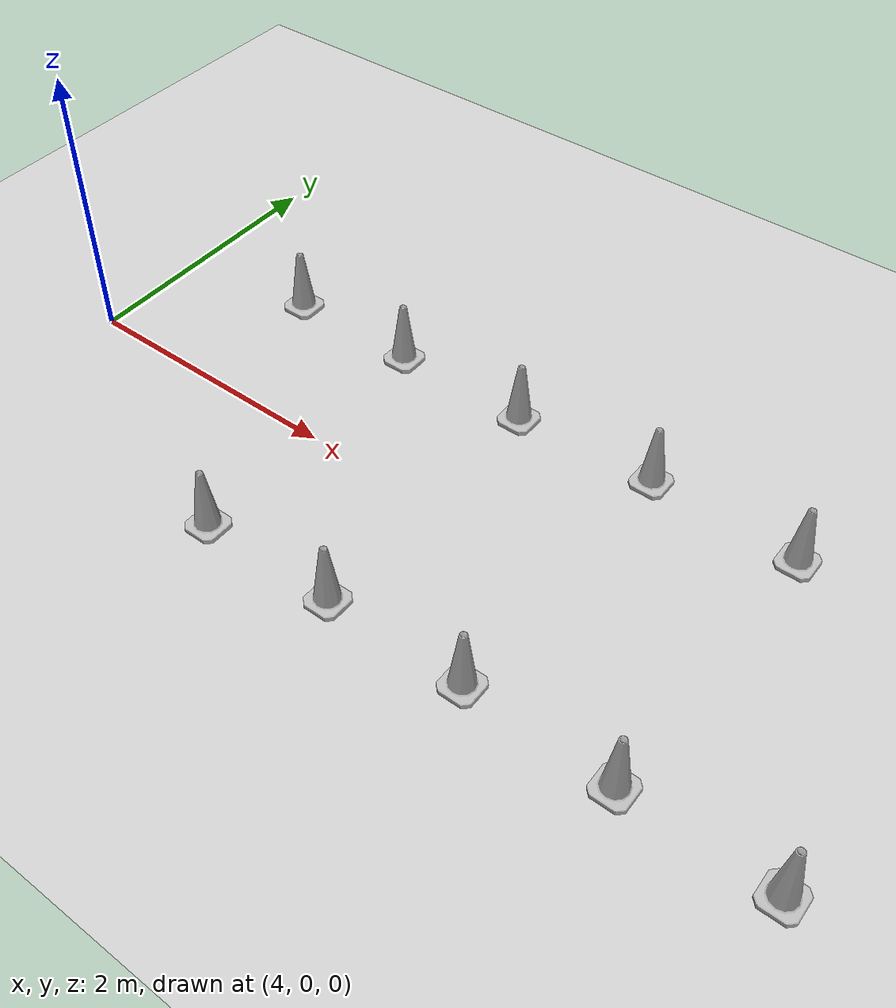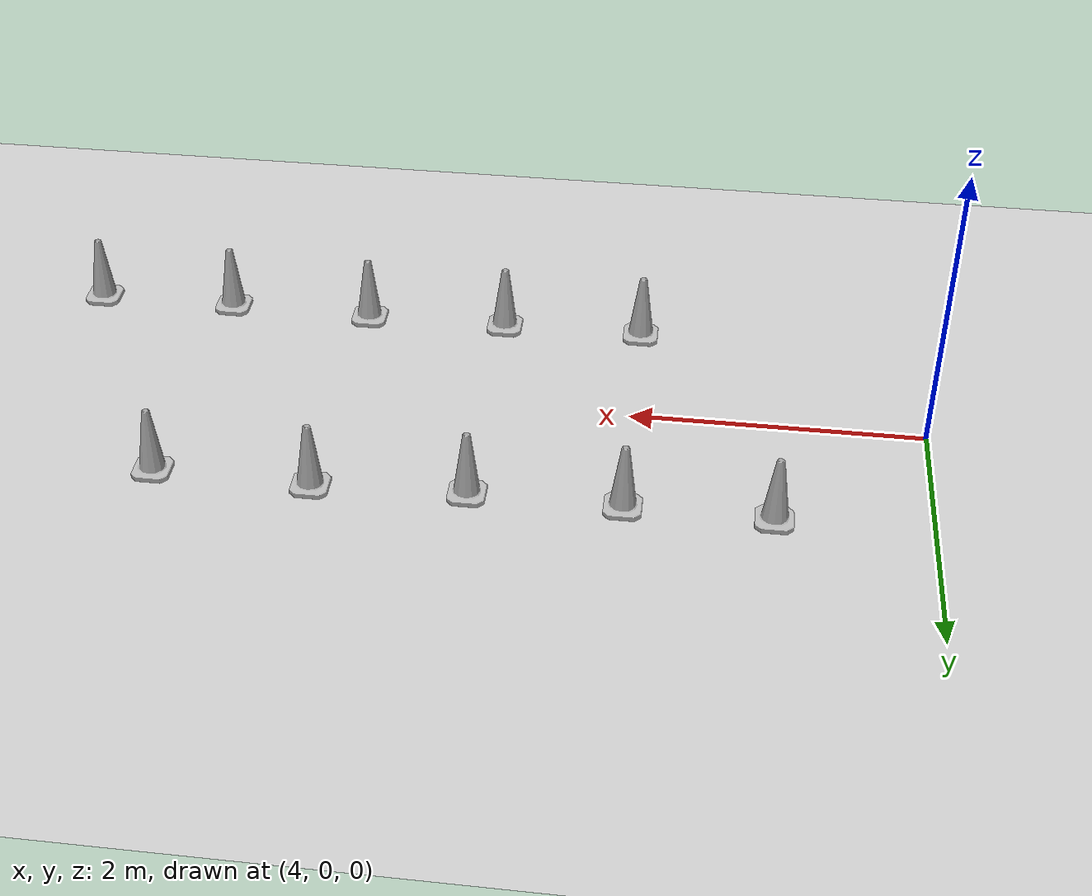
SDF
<sdf version="1.7">
 <world name="default">
  <model name="ground_plane">
   <static>1</static>
   <link name="link">
    <collision name="collision">
     <geometry><plane><normal>0 0 1</normal><size>100 100</size></plane></geometry>
     <surface>
      <contact><collide_bitmask>65535</collide_bitmask></contact>
      <friction><ode><mu>100</mu><mu2>50</mu2></ode></friction>
     </surface>
    </collision>
    <visual name="visual">
     <cast_shadows>0</cast_shadows>
     <geometry><plane><normal>0 0 1</normal><size>100 100</size></plane></geometry>
     <material>
      <script><uri>file://media/materials/scripts/gazebo.material</uri><name>Gazebo/Grey</name></script>
     </material>
    </visual>
   </link>
  </model>
  <model name="Construction_Cone_b_5">
   <link name="link">
    <inertial>
     <inertia><ixx>1</ixx><ixy>0</ixy><ixz>0</ixz><iyy>1</iyy><iyz>0</iyz><izz>1</izz></inertia>
     <mass>1</mass>
    </inertial>
    <visual name="visual">
     <geometry>
      <mesh><scale>4.9 4.9 4.5</scale><uri>./construction_cone/meshes/construction_cone_b.dae</uri></mesh>
     </geometry>
     <material><shader type="pixel"/></material>
    </visual>
    <collision name="collision">
     <geometry>
      <mesh><uri>./construction_cone/meshes/construction_cone_b.dae</uri><scale>4.9 4.9 4.5</scale></mesh>
     </geometry>
     <surface>
      <friction>
       <ode><mu>1</mu><mu2>1</mu2><fdir1>0 0 0</fdir1><slip1>0</slip1><slip2>0</slip2></ode>
       <torsional>
        <coefficient>1</coefficient>
        <patch_radius>0</patch_radius>
        <surface_radius>0</surface_radius>
        <use_patch_radius>1</use_patch_radius>
        <ode><slip>0</slip></ode>
       </torsional>
      </friction>
      <bounce><restitution_coefficient>0</restitution_coefficient><threshold>1e+06</threshold></bounce>
      <contact>
       <collide_without_contact>0</collide_without_contact>
       <collide_without_contact_bitmask>1</collide_without_contact_bitmask>
       <collide_bitmask>1</collide_bitmask>
       <ode>
        <soft_cfm>0</soft_cfm>
        <soft_erp>0.2</soft_erp>
        <kp>1e+13</kp>
        <kd>1</kd>
        <max_vel>0.01</max_vel>
        <min_depth>0</min_depth>
       </ode>
       <bullet>
        <split_impulse>1</split_impulse>
        <split_impulse_penetration_threshold>-0.01</split_impulse_penetration_threshold>
        <soft_cfm>0</soft_cfm>
        <soft_erp>0.2</soft_erp>
        <kp>1e+13</kp>
        <kd>1</kd>
       </bullet>
      </contact>
     </surface>
    </collision>
   </link>
   <static>0</static>
   <pose>5.98393 -0.993979 -3e-06 1e-06 -2e-06 -0</pose>
  </model>
  <model name="Construction_Cone_b_6">
   <link name="link">
    <inertial>
     <inertia><ixx>1</ixx><ixy>0</ixy><ixz>0</ixz><iyy>1</iyy><iyz>0</iyz><izz>1</izz></inertia>
     <mass>1</mass>
    </inertial>
    <visual name="visual">
     <geometry>
      <mesh><scale>4.9 4.9 4.5</scale><uri>./construction_cone/meshes/construction_cone_b.dae</uri></mesh>
     </geometry>
     <material><shader type="pixel"/></material>
    </visual>
    <collision name="collision">
     <geometry>
      <mesh><uri>./construction_cone/meshes/construction_cone_b.dae</uri><scale>4.9 4.9 4.5</scale></mesh>
     </geometry>
     <surface>
      <friction>
       <ode><mu>1</mu><mu2>1</mu2><fdir1>0 0 0</fdir1><slip1>0</slip1><slip2>0</slip2></ode>
       <torsional>
        <coefficient>1</coefficient>
        <patch_radius>0</patch_radius>
        <surface_radius>0</surface_radius>
        <use_patch_radius>1</use_patch_radius>
        <ode><slip>0</slip></ode>
       </torsional>
      </friction>
      <bounce><restitution_coefficient>0</restitution_coefficient><threshold>1e+06</threshold></bounce>
      <contact>
       <collide_without_contact>0</collide_without_contact>
       <collide_without_contact_bitmask>1</collide_without_contact_bitmask>
       <collide_bitmask>1</collide_bitmask>
       <ode>
        <soft_cfm>0</soft_cfm>
        <soft_erp>0.2</soft_erp>
        <kp>1e+13</kp>
        <kd>1</kd>
        <max_vel>0.01</max_vel>
        <min_depth>0</min_depth>
       </ode>
       <bullet>
        <split_impulse>1</split_impulse>
        <split_impulse_penetration_threshold>-0.01</split_impulse_penetration_threshold>
        <soft_cfm>0</soft_cfm>
        <soft_erp>0.2</soft_erp>
        <kp>1e+13</kp>
        <kd>1</kd>
       </bullet>
      </contact>
     </surface>
    </collision>
   </link>
   <static>0</static>
   <pose>6.97365 -0.984254 -8e-06 1e-06 -1e-06 0</pose>
  </model>
  <model name="Construction_Cone_b_7">
   <link name="link">
    <inertial>
     <inertia><ixx>1</ixx><ixy>0</ixy><ixz>0</ixz><iyy>1</iyy><iyz>0</iyz><izz>1</izz></inertia>
     <mass>1</mass>
    </inertial>
    <visual name="visual">
     <geometry>
      <mesh><scale>4.9 4.9 4.5</scale><uri>./construction_cone/meshes/construction_cone_b.dae</uri></mesh>
     </geometry>
     <material><shader type="pixel"/></material>
    </visual>
    <collision name="collision">
     <geometry>
      <mesh><uri>./construction_cone/meshes/construction_cone_b.dae</uri><scale>4.9 4.9 4.5</scale></mesh>
     </geometry>
     <surface>
      <friction>
       <ode><mu>1</mu><mu2>1</mu2><fdir1>0 0 0</fdir1><slip1>0</slip1><slip2>0</slip2></ode>
       <torsional>
        <coefficient>1</coefficient>
        <patch_radius>0</patch_radius>
        <surface_radius>0</surface_radius>
        <use_patch_radius>1</use_patch_radius>
        <ode><slip>0</slip></ode>
       </torsional>
      </friction>
      <bounce><restitution_coefficient>0</restitution_coefficient><threshold>1e+06</threshold></bounce>
      <contact>
       <collide_without_contact>0</collide_without_contact>
       <collide_without_contact_bitmask>1</collide_without_contact_bitmask>
       <collide_bitmask>1</collide_bitmask>
       <ode>
        <soft_cfm>0</soft_cfm>
        <soft_erp>0.2</soft_erp>
        <kp>1e+13</kp>
        <kd>1</kd>
        <max_vel>0.01</max_vel>
        <min_depth>0</min_depth>
       </ode>
       <bullet>
        <split_impulse>1</split_impulse>
        <split_impulse_penetration_threshold>-0.01</split_impulse_penetration_threshold>
        <soft_cfm>0</soft_cfm>
        <soft_erp>0.2</soft_erp>
        <kp>1e+13</kp>
        <kd>1</kd>
       </bullet>
      </contact>
     </surface>
    </collision>
   </link>
   <static>0</static>
   <pose>7.97287 -0.974803 -1e-06 1e-06 -0 0</pose>
  </model>
  <model name="Construction_Cone_b_8">
   <link name="link">
    <inertial>
     <inertia><ixx>1</ixx><ixy>0</ixy><ixz>0</ixz><iyy>1</iyy><iyz>0</iyz><izz>1</izz></inertia>
     <mass>1</mass>
    </inertial>
    <visual name="visual">
     <geometry>
      <mesh><scale>4.9 4.9 4.5</scale><uri>./construction_cone/meshes/construction_cone_b.dae</uri></mesh>
     </geometry>
     <material><shader type="pixel"/></material>
    </visual>
    <collision name="collision">
     <geometry>
      <mesh><uri>./construction_cone/meshes/construction_cone_b.dae</uri><scale>4.9 4.9 4.5</scale></mesh>
     </geometry>
     <surface>
      <friction>
       <ode><mu>1</mu><mu2>1</mu2><fdir1>0 0 0</fdir1><slip1>0</slip1><slip2>0</slip2></ode>
       <torsional>
        <coefficient>1</coefficient>
        <patch_radius>0</patch_radius>
        <surface_radius>0</surface_radius>
        <use_patch_radius>1</use_patch_radius>
        <ode><slip>0</slip></ode>
       </torsional>
      </friction>
      <bounce><restitution_coefficient>0</restitution_coefficient><threshold>1e+06</threshold></bounce>
      <contact>
       <collide_without_contact>0</collide_without_contact>
       <collide_without_contact_bitmask>1</collide_without_contact_bitmask>
       <collide_bitmask>1</collide_bitmask>
       <ode>
        <soft_cfm>0</soft_cfm>
        <soft_erp>0.2</soft_erp>
        <kp>1e+13</kp>
        <kd>1</kd>
        <max_vel>0.01</max_vel>
        <min_depth>0</min_depth>
       </ode>
       <bullet>
        <split_impulse>1</split_impulse>
        <split_impulse_penetration_threshold>-0.01</split_impulse_penetration_threshold>
        <soft_cfm>0</soft_cfm>
        <soft_erp>0.2</soft_erp>
        <kp>1e+13</kp>
        <kd>1</kd>
       </bullet>
      </contact>
     </surface>
    </collision>
   </link>
   <static>0</static>
   <pose>9.00159 -0.999662 -7e-06 -1e-06 1e-06 0</pose>
  </model>
  <model name="Construction_Cone_b_9">
   <link name="link">
    <inertial>
     <inertia><ixx>1</ixx><ixy>0</ixy><ixz>0</ixz><iyy>1</iyy><iyz>0</iyz><izz>1</izz></inertia>
     <mass>1</mass>
    </inertial>
    <visual name="visual">
     <geometry>
      <mesh><scale>4.9 4.9 4.5</scale><uri>./construction_cone/meshes/construction_cone_b.dae</uri></mesh>
     </geometry>
     <material><shader type="pixel"/></material>
    </visual>
    <collision name="collision">
     <geometry>
      <mesh><uri>./construction_cone/meshes/construction_cone_b.dae</uri><scale>4.9 4.9 4.5</scale></mesh>
     </geometry>
     <surface>
      <friction>
       <ode><mu>1</mu><mu2>1</mu2><fdir1>0 0 0</fdir1><slip1>0</slip1><slip2>0</slip2></ode>
       <torsional>
        <coefficient>1</coefficient>
        <patch_radius>0</patch_radius>
        <surface_radius>0</surface_radius>
        <use_patch_radius>1</use_patch_radius>
        <ode><slip>0</slip></ode>
       </torsional>
      </friction>
      <bounce><restitution_coefficient>0</restitution_coefficient><threshold>1e+06</threshold></bounce>
      <contact>
       <collide_without_contact>0</collide_without_contact>
       <collide_without_contact_bitmask>1</collide_without_contact_bitmask>
       <collide_bitmask>1</collide_bitmask>
       <ode>
        <soft_cfm>0</soft_cfm>
        <soft_erp>0.2</soft_erp>
        <kp>1e+13</kp>
        <kd>1</kd>
        <max_vel>0.01</max_vel>
        <min_depth>0</min_depth>
       </ode>
       <bullet>
        <split_impulse>1</split_impulse>
        <split_impulse_penetration_threshold>-0.01</split_impulse_penetration_threshold>
        <soft_cfm>0</soft_cfm>
        <soft_erp>0.2</soft_erp>
        <kp>1e+13</kp>
        <kd>1</kd>
       </bullet>
      </contact>
     </surface>
    </collision>
   </link>
   <static>0</static>
   <pose>9.98921 -1.00261 -5e-06 1e-06 2e-06 0</pose>
  </model>
  <model name="Construction_Cone_y_4">
   <link name="link">
    <inertial>
     <inertia><ixx>1</ixx><ixy>0</ixy><ixz>0</ixz><iyy>1</iyy><iyz>0</iyz><izz>1</izz></inertia>
     <mass>1</mass>
    </inertial>
    <visual name="visual">
     <geometry>
      <mesh><scale>4.9 4.9 4.5</scale><uri>./construction_cone/meshes/construction_cone_y.dae</uri></mesh>
     </geometry>
     <material><shader type="pixel"/></material>
    </visual>
    <collision name="collision">
     <geometry>
      <mesh><uri>./construction_cone/meshes/construction_cone_y.dae</uri><scale>4.9 4.9 4.5</scale></mesh>
     </geometry>
     <surface>
      <friction>
       <ode><mu>1</mu><mu2>1</mu2><fdir1>0 0 0</fdir1><slip1>0</slip1><slip2>0</slip2></ode>
       <torsional>
        <coefficient>1</coefficient>
        <patch_radius>0</patch_radius>
        <surface_radius>0</surface_radius>
        <use_patch_radius>1</use_patch_radius>
        <ode><slip>0</slip></ode>
       </torsional>
      </friction>
      <bounce><restitution_coefficient>0</restitution_coefficient><threshold>1e+06</threshold></bounce>
      <contact>
       <collide_without_contact>0</collide_without_contact>
       <collide_without_contact_bitmask>1</collide_without_contact_bitmask>
       <collide_bitmask>1</collide_bitmask>
       <ode>
        <soft_cfm>0</soft_cfm>
        <soft_erp>0.2</soft_erp>
        <kp>1e+13</kp>
        <kd>1</kd>
        <max_vel>0.01</max_vel>
        <min_depth>0</min_depth>
       </ode>
       <bullet>
        <split_impulse>1</split_impulse>
        <split_impulse_penetration_threshold>-0.01</split_impulse_penetration_threshold>
        <soft_cfm>0</soft_cfm>
        <soft_erp>0.2</soft_erp>
        <kp>1e+13</kp>
        <kd>1</kd>
       </bullet>
      </contact>
     </surface>
    </collision>
   </link>
   <static>0</static>
   <pose>5.01116 0.998977 -1e-06 1e-06 1e-06 0</pose>
  </model>
  <model name="Construction_Cone_y_5">
   <link name="link">
    <inertial>
     <inertia><ixx>1</ixx><ixy>0</ixy><ixz>0</ixz><iyy>1</iyy><iyz>0</iyz><izz>1</izz></inertia>
     <mass>1</mass>
    </inertial>
    <visual name="visual">
     <geometry>
      <mesh><scale>4.9 4.9 4.5</scale><uri>./construction_cone/meshes/construction_cone_y.dae</uri></mesh>
     </geometry>
     <material><shader type="pixel"/></material>
    </visual>
    <collision name="collision">
     <geometry>
      <mesh><uri>./construction_cone/meshes/construction_cone_y.dae</uri><scale>4.9 4.9 4.5</scale></mesh>
     </geometry>
     <surface>
      <friction>
       <ode><mu>1</mu><mu2>1</mu2><fdir1>0 0 0</fdir1><slip1>0</slip1><slip2>0</slip2></ode>
       <torsional>
        <coefficient>1</coefficient>
        <patch_radius>0</patch_radius>
        <surface_radius>0</surface_radius>
        <use_patch_radius>1</use_patch_radius>
        <ode><slip>0</slip></ode>
       </torsional>
      </friction>
      <bounce><restitution_coefficient>0</restitution_coefficient><threshold>1e+06</threshold></bounce>
      <contact>
       <collide_without_contact>0</collide_without_contact>
       <collide_without_contact_bitmask>1</collide_without_contact_bitmask>
       <collide_bitmask>1</collide_bitmask>
       <ode>
        <soft_cfm>0</soft_cfm>
        <soft_erp>0.2</soft_erp>
        <kp>1e+13</kp>
        <kd>1</kd>
        <max_vel>0.01</max_vel>
        <min_depth>0</min_depth>
       </ode>
       <bullet>
        <split_impulse>1</split_impulse>
        <split_impulse_penetration_threshold>-0.01</split_impulse_penetration_threshold>
        <soft_cfm>0</soft_cfm>
        <soft_erp>0.2</soft_erp>
        <kp>1e+13</kp>
        <kd>1</kd>
       </bullet>
      </contact>
     </surface>
    </collision>
   </link>
   <static>0</static>
   <pose>5.97438 0.993298 -8e-06 0 -1e-06 0</pose>
  </model>
  <model name="Construction_Cone_y_6">
   <link name="link">
    <inertial>
     <inertia><ixx>1</ixx><ixy>0</ixy><ixz>0</ixz><iyy>1</iyy><iyz>0</iyz><izz>1</izz></inertia>
     <mass>1</mass>
    </inertial>
    <visual name="visual">
     <geometry>
      <mesh><scale>4.9 4.9 4.5</scale><uri>./construction_cone/meshes/construction_cone_y.dae</uri></mesh>
     </geometry>
     <material><shader type="pixel"/></material>
    </visual>
    <collision name="collision">
     <geometry>
      <mesh><uri>./construction_cone/meshes/construction_cone_y.dae</uri><scale>4.9 4.9 4.5</scale></mesh>
     </geometry>
     <surface>
      <friction>
       <ode><mu>1</mu><mu2>1</mu2><fdir1>0 0 0</fdir1><slip1>0</slip1><slip2>0</slip2></ode>
       <torsional>
        <coefficient>1</coefficient>
        <patch_radius>0</patch_radius>
        <surface_radius>0</surface_radius>
        <use_patch_radius>1</use_patch_radius>
        <ode><slip>0</slip></ode>
       </torsional>
      </friction>
      <bounce><restitution_coefficient>0</restitution_coefficient><threshold>1e+06</threshold></bounce>
      <contact>
       <collide_without_contact>0</collide_without_contact>
       <collide_without_contact_bitmask>1</collide_without_contact_bitmask>
       <collide_bitmask>1</collide_bitmask>
       <ode>
        <soft_cfm>0</soft_cfm>
        <soft_erp>0.2</soft_erp>
        <kp>1e+13</kp>
        <kd>1</kd>
        <max_vel>0.01</max_vel>
        <min_depth>0</min_depth>
       </ode>
       <bullet>
        <split_impulse>1</split_impulse>
        <split_impulse_penetration_threshold>-0.01</split_impulse_penetration_threshold>
        <soft_cfm>0</soft_cfm>
        <soft_erp>0.2</soft_erp>
        <kp>1e+13</kp>
        <kd>1</kd>
       </bullet>
      </contact>
     </surface>
    </collision>
   </link>
   <static>0</static>
   <pose>6.98135 0.986367 -9e-06 1e-06 -0 0</pose>
  </model>
  <model name="Construction_Cone_y_7">
   <link name="link">
    <inertial>
     <inertia><ixx>1</ixx><ixy>0</ixy><ixz>0</ixz><iyy>1</iyy><iyz>0</iyz><izz>1</izz></inertia>
     <mass>1</mass>
    </inertial>
    <visual name="visual">
     <geometry>
      <mesh><scale>4.9 4.9 4.5</scale><uri>./construction_cone/meshes/construction_cone_y.dae</uri></mesh>
     </geometry>
     <material><shader type="pixel"/></material>
    </visual>
    <collision name="collision">
     <geometry>
      <mesh><uri>./construction_cone/meshes/construction_cone_y.dae</uri><scale>4.9 4.9 4.5</scale></mesh>
     </geometry>
     <surface>
      <friction>
       <ode><mu>1</mu><mu2>1</mu2><fdir1>0 0 0</fdir1><slip1>0</slip1><slip2>0</slip2></ode>
       <torsional>
        <coefficient>1</coefficient>
        <patch_radius>0</patch_radius>
        <surface_radius>0</surface_radius>
        <use_patch_radius>1</use_patch_radius>
        <ode><slip>0</slip></ode>
       </torsional>
      </friction>
      <bounce><restitution_coefficient>0</restitution_coefficient><threshold>1e+06</threshold></bounce>
      <contact>
       <collide_without_contact>0</collide_without_contact>
       <collide_without_contact_bitmask>1</collide_without_contact_bitmask>
       <collide_bitmask>1</collide_bitmask>
       <ode>
        <soft_cfm>0</soft_cfm>
        <soft_erp>0.2</soft_erp>
        <kp>1e+13</kp>
        <kd>1</kd>
        <max_vel>0.01</max_vel>
        <min_depth>0</min_depth>
       </ode>
       <bullet>
        <split_impulse>1</split_impulse>
        <split_impulse_penetration_threshold>-0.01</split_impulse_penetration_threshold>
        <soft_cfm>0</soft_cfm>
        <soft_erp>0.2</soft_erp>
        <kp>1e+13</kp>
        <kd>1</kd>
       </bullet>
      </contact>
     </surface>
    </collision>
   </link>
   <static>0</static>
   <pose>8.00083 1.03382 -7e-06 0 1e-06 0</pose>
  </model>
  <model name="Construction_Cone_y_8">
   <link name="link">
    <inertial>
     <inertia><ixx>1</ixx><ixy>0</ixy><ixz>0</ixz><iyy>1</iyy><iyz>0</iyz><izz>1</izz></inertia>
     <mass>1</mass>
    </inertial>
    <visual name="visual">
     <geometry>
      <mesh><scale>4.9 4.9 4.5</scale><uri>./construction_cone/meshes/construction_cone_y.dae</uri></mesh>
     </geometry>
     <material><shader type="pixel"/></material>
    </visual>
    <collision name="collision">
     <geometry>
      <mesh><uri>./construction_cone/meshes/construction_cone_y.dae</uri><scale>4.9 4.9 4.5</scale></mesh>
     </geometry>
     <surface>
      <friction>
       <ode><mu>1</mu><mu2>1</mu2><fdir1>0 0 0</fdir1><slip1>0</slip1><slip2>0</slip2></ode>
       <torsional>
        <coefficient>1</coefficient>
        <patch_radius>0</patch_radius>
        <surface_radius>0</surface_radius>
        <use_patch_radius>1</use_patch_radius>
        <ode><slip>0</slip></ode>
       </torsional>
      </friction>
      <bounce><restitution_coefficient>0</restitution_coefficient><threshold>1e+06</threshold></bounce>
      <contact>
       <collide_without_contact>0</collide_without_contact>
       <collide_without_contact_bitmask>1</collide_without_contact_bitmask>
       <collide_bitmask>1</collide_bitmask>
       <ode>
        <soft_cfm>0</soft_cfm>
        <soft_erp>0.2</soft_erp>
        <kp>1e+13</kp>
        <kd>1</kd>
        <max_vel>0.01</max_vel>
        <min_depth>0</min_depth>
       </ode>
       <bullet>
        <split_impulse>1</split_impulse>
        <split_impulse_penetration_threshold>-0.01</split_impulse_penetration_threshold>
        <soft_cfm>0</soft_cfm>
        <soft_erp>0.2</soft_erp>
        <kp>1e+13</kp>
        <kd>1</kd>
       </bullet>
      </contact>
     </surface>
    </collision>
   </link>
   <static>0</static>
   <pose>9.06187 1.00344 -6e-06 0 -0 0</pose>
  </model>
 </world>
</sdf>
